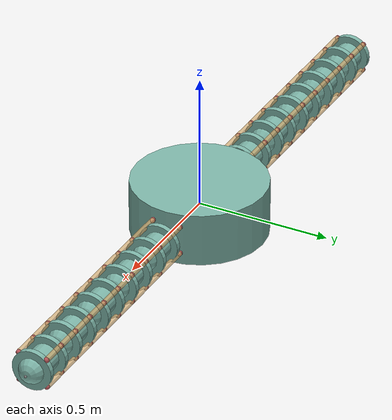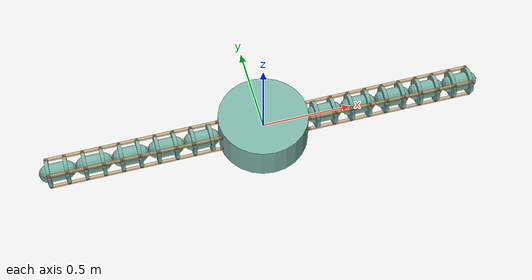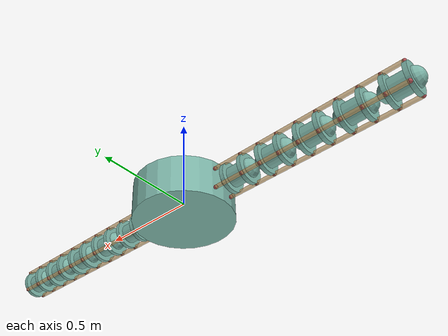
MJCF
<mujoco model="morphology">
    <compiler angle="radian" autolimits="true"/>
    <option viscosity="10" integrator="implicit">
        <flag gravity="disable" contact="disable"/>
    </option>
    <default>
        <default class="/"/>
        <default class="translation">
            <position kp="1000"/>
        </default>
        <default class="rotation">
            <position kp=".2" ctrlrange="-1.571 1.571" ctrllimited="true"/>
        </default>
    </default>
    <worldbody>
        <body name="//unnamed_body_0">
            <body name="central_disc" pos="0 0 0" euler="0 0 0">
                <geom name="central_disc_disc" class="/" type="cylinder" size="0.25 0.10000000000000001"
                      rgba="0.49019607843137253 0.70980392156862748 0.6588235294117647 1" pos="0 0 0" euler="0 0 0"/>
                <body name="arm_0" pos="0.25 0 0" euler="0 0 0">
                    <site name="reference" pos="0 0 0"/>
                    <body name="arm_0_segment_0" pos="0 0 0" euler="0 0 0">
                        <geom name="arm_0_segment_0_capsule" class="/" type="capsule"
                              size="0.050000000000000003 0.050000000000000003"
                              rgba="0.49019607843137253 0.70980392156862748 0.6588235294117647 1"
                              pos="0.10000000000000001 0 0" euler="0 1.5707963267948966 0"/>
                        <joint name="arm_0_segment_0_in_plane_joint" class="/" type="hinge" pos="0 0 0" axis="0 0 1"
                               limited="true" stiffness="10" range="-0.3490658503988659 0.3490658503988659"
                               damping="1"/>
                        <joint name="arm_0_segment_0_out_of_plane_joint" class="/" type="hinge" pos="0 0 0" axis="0 1 0"
                               limited="true" stiffness="10" range="-0.3490658503988659 0.3490658503988659"
                               damping="1"/>
                        <geom name="arm_0_segment_0_tendon_plate_proximal" class="/" type="cylinder"
                              size="0.075000000000000011 0.01"
                              rgba="0.49019607843137253 0.70980392156862748 0.6588235294117647 1"
                              pos="0.050000000000000003 0 0" euler="0 1.5707963267948966 0"/>
                        <site name="arm_0_segment_0_muscle_attachment_point_proximal_0" class="/" type="sphere"
                              rgba="0.71764705882352942 0.33725490196078434 0.34901960784313724 1" size="0.01"
                              pos="0 0.053033008588991078 -0.053033008588991071"/>
                        <site name="arm_0_segment_0_muscle_attachment_point_proximal_1" class="/" type="sphere"
                              rgba="0.71764705882352942 0.33725490196078434 0.34901960784313724 1" size="0.01"
                              pos="0 -0.053033008588991071 -0.053033008588991078"/>
                        <site name="arm_0_segment_0_muscle_attachment_point_proximal_2" class="/" type="sphere"
                              rgba="0.71764705882352942 0.33725490196078434 0.34901960784313724 1" size="0.01"
                              pos="0 0.053033008588991078 0.053033008588991071"/>
                        <site name="arm_0_segment_0_muscle_attachment_point_proximal_3" class="/" type="sphere"
                              rgba="0.71764705882352942 0.33725490196078434 0.34901960784313724 1" size="0.01"
                              pos="0 -0.053033008588991071 0.053033008588991078"/>
                        <geom name="arm_0_segment_0_tendon_plate_distal" class="/" type="cylinder"
                              size="0.075000000000000011 0.01"
                              rgba="0.49019607843137253 0.70980392156862748 0.6588235294117647 1"
                              pos="0.15000000000000002 0 0" euler="0 1.5707963267948966 0"/>
                        <site name="arm_0_segment_0_muscle_attachment_point_distal_0" class="/" type="sphere"
                              rgba="0.71764705882352942 0.33725490196078434 0.34901960784313724 1" size="0.01"
                              pos="0.15000000000000002 0.053033008588991078 -0.053033008588991071"/>
                        <site name="arm_0_segment_0_muscle_attachment_point_distal_1" class="/" type="sphere"
                              rgba="0.71764705882352942 0.33725490196078434 0.34901960784313724 1" size="0.01"
                              pos="0.15000000000000002 -0.053033008588991071 -0.053033008588991078"/>
                        <site name="arm_0_segment_0_muscle_attachment_point_distal_2" class="/" type="sphere"
                              rgba="0.71764705882352942 0.33725490196078434 0.34901960784313724 1" size="0.01"
                              pos="0.15000000000000002 0.053033008588991078 0.053033008588991071"/>
                        <site name="arm_0_segment_0_muscle_attachment_point_distal_3" class="/" type="sphere"
                              rgba="0.71764705882352942 0.33725490196078434 0.34901960784313724 1" size="0.01"
                              pos="0.15000000000000002 -0.053033008588991071 0.053033008588991078"/>
                        <body name="arm_0_segment_1" pos="0.20000000000000001 0 0" euler="0 0 0">
                            <geom name="arm_0_segment_1_capsule" class="/" type="capsule"
                                  size="0.050000000000000003 0.050000000000000003"
                                  rgba="0.49019607843137253 0.70980392156862748 0.6588235294117647 1"
                                  pos="0.10000000000000001 0 0" euler="0 1.5707963267948966 0"/>
                            <joint name="arm_0_segment_1_in_plane_joint" class="/" type="hinge" pos="0 0 0" axis="0 0 1"
                                   limited="true" stiffness="10" range="-0.3490658503988659 0.3490658503988659"
                                   damping="1"/>
                            <joint name="arm_0_segment_1_out_of_plane_joint" class="/" type="hinge" pos="0 0 0"
                                   axis="0 1 0" limited="true" stiffness="10"
                                   range="-0.3490658503988659 0.3490658503988659" damping="1"/>
                            <geom name="arm_0_segment_1_tendon_plate_proximal" class="/" type="cylinder"
                                  size="0.075000000000000011 0.01"
                                  rgba="0.49019607843137253 0.70980392156862748 0.6588235294117647 1"
                                  pos="0.050000000000000003 0 0" euler="0 1.5707963267948966 0"/>
                            <site name="arm_0_segment_1_muscle_attachment_point_proximal_0" class="/" type="sphere"
                                  rgba="0.71764705882352942 0.33725490196078434 0.34901960784313724 1" size="0.01"
                                  pos="0.050000000000000003 0.053033008588991078 -0.053033008588991071"/>
                            <site name="arm_0_segment_1_muscle_attachment_point_proximal_1" class="/" type="sphere"
                                  rgba="0.71764705882352942 0.33725490196078434 0.34901960784313724 1" size="0.01"
                                  pos="0.050000000000000003 -0.053033008588991071 -0.053033008588991078"/>
                            <site name="arm_0_segment_1_muscle_attachment_point_proximal_2" class="/" type="sphere"
                                  rgba="0.71764705882352942 0.33725490196078434 0.34901960784313724 1" size="0.01"
                                  pos="0.050000000000000003 0.053033008588991078 0.053033008588991071"/>
                            <site name="arm_0_segment_1_muscle_attachment_point_proximal_3" class="/" type="sphere"
                                  rgba="0.71764705882352942 0.33725490196078434 0.34901960784313724 1" size="0.01"
                                  pos="0.050000000000000003 -0.053033008588991071 0.053033008588991078"/>
                            <geom name="arm_0_segment_1_tendon_plate_distal" class="/" type="cylinder"
                                  size="0.075000000000000011 0.01"
                                  rgba="0.49019607843137253 0.70980392156862748 0.6588235294117647 1"
                                  pos="0.15000000000000002 0 0" euler="0 1.5707963267948966 0"/>
                            <site name="arm_0_segment_1_muscle_attachment_point_distal_0" class="/" type="sphere"
                                  rgba="0.71764705882352942 0.33725490196078434 0.34901960784313724 1" size="0.01"
                                  pos="0.15000000000000002 0.053033008588991078 -0.053033008588991071"/>
                            <site name="arm_0_segment_1_muscle_attachment_point_distal_1" class="/" type="sphere"
                                  rgba="0.71764705882352942 0.33725490196078434 0.34901960784313724 1" size="0.01"
                                  pos="0.15000000000000002 -0.053033008588991071 -0.053033008588991078"/>
                            <site name="arm_0_segment_1_muscle_attachment_point_distal_2" class="/" type="sphere"
                                  rgba="0.71764705882352942 0.33725490196078434 0.34901960784313724 1" size="0.01"
                                  pos="0.15000000000000002 0.053033008588991078 0.053033008588991071"/>
                            <site name="arm_0_segment_1_muscle_attachment_point_distal_3" class="/" type="sphere"
                                  rgba="0.71764705882352942 0.33725490196078434 0.34901960784313724 1" size="0.01"
                                  pos="0.15000000000000002 -0.053033008588991071 0.053033008588991078"/>
                            <body name="arm_0_segment_2" pos="0.20000000000000001 0 0" euler="0 0 0">
                                <geom name="arm_0_segment_2_capsule" class="/" type="capsule"
                                      size="0.050000000000000003 0.050000000000000003"
                                      rgba="0.49019607843137253 0.70980392156862748 0.6588235294117647 1"
                                      pos="0.10000000000000001 0 0" euler="0 1.5707963267948966 0"/>
                                <joint name="arm_0_segment_2_in_plane_joint" class="/" type="hinge" pos="0 0 0"
                                       axis="0 0 1" limited="true" stiffness="10"
                                       range="-0.3490658503988659 0.3490658503988659" damping="1"/>
                                <joint name="arm_0_segment_2_out_of_plane_joint" class="/" type="hinge" pos="0 0 0"
                                       axis="0 1 0" limited="true" stiffness="10"
                                       range="-0.3490658503988659 0.3490658503988659" damping="1"/>
                                <geom name="arm_0_segment_2_tendon_plate_proximal" class="/" type="cylinder"
                                      size="0.075000000000000011 0.01"
                                      rgba="0.49019607843137253 0.70980392156862748 0.6588235294117647 1"
                                      pos="0.050000000000000003 0 0" euler="0 1.5707963267948966 0"/>
                                <site name="arm_0_segment_2_muscle_attachment_point_proximal_0" class="/" type="sphere"
                                      rgba="0.71764705882352942 0.33725490196078434 0.34901960784313724 1" size="0.01"
                                      pos="0.050000000000000003 0.053033008588991078 -0.053033008588991071"/>
                                <site name="arm_0_segment_2_muscle_attachment_point_proximal_1" class="/" type="sphere"
                                      rgba="0.71764705882352942 0.33725490196078434 0.34901960784313724 1" size="0.01"
                                      pos="0.050000000000000003 -0.053033008588991071 -0.053033008588991078"/>
                                <site name="arm_0_segment_2_muscle_attachment_point_proximal_2" class="/" type="sphere"
                                      rgba="0.71764705882352942 0.33725490196078434 0.34901960784313724 1" size="0.01"
                                      pos="0.050000000000000003 0.053033008588991078 0.053033008588991071"/>
                                <site name="arm_0_segment_2_muscle_attachment_point_proximal_3" class="/" type="sphere"
                                      rgba="0.71764705882352942 0.33725490196078434 0.34901960784313724 1" size="0.01"
                                      pos="0.050000000000000003 -0.053033008588991071 0.053033008588991078"/>
                                <geom name="arm_0_segment_2_tendon_plate_distal" class="/" type="cylinder"
                                      size="0.075000000000000011 0.01"
                                      rgba="0.49019607843137253 0.70980392156862748 0.6588235294117647 1"
                                      pos="0.15000000000000002 0 0" euler="0 1.5707963267948966 0"/>
                                <site name="arm_0_segment_2_muscle_attachment_point_distal_0" class="/" type="sphere"
                                      rgba="0.71764705882352942 0.33725490196078434 0.34901960784313724 1" size="0.01"
                                      pos="0.15000000000000002 0.053033008588991078 -0.053033008588991071"/>
                                <site name="arm_0_segment_2_muscle_attachment_point_distal_1" class="/" type="sphere"
                                      rgba="0.71764705882352942 0.33725490196078434 0.34901960784313724 1" size="0.01"
                                      pos="0.15000000000000002 -0.053033008588991071 -0.053033008588991078"/>
                                <site name="arm_0_segment_2_muscle_attachment_point_distal_2" class="/" type="sphere"
                                      rgba="0.71764705882352942 0.33725490196078434 0.34901960784313724 1" size="0.01"
                                      pos="0.15000000000000002 0.053033008588991078 0.053033008588991071"/>
                                <site name="arm_0_segment_2_muscle_attachment_point_distal_3" class="/" type="sphere"
                                      rgba="0.71764705882352942 0.33725490196078434 0.34901960784313724 1" size="0.01"
                                      pos="0.15000000000000002 -0.053033008588991071 0.053033008588991078"/>
                                <body name="arm_0_segment_3" pos="0.20000000000000001 0 0" euler="0 0 0">
                                    <geom name="arm_0_segment_3_capsule" class="/" type="capsule"
                                          size="0.050000000000000003 0.050000000000000003"
                                          rgba="0.49019607843137253 0.70980392156862748 0.6588235294117647 1"
                                          pos="0.10000000000000001 0 0" euler="0 1.5707963267948966 0"/>
                                    <joint name="arm_0_segment_3_in_plane_joint" class="/" type="hinge" pos="0 0 0"
                                           axis="0 0 1" limited="true" stiffness="10"
                                           range="-0.3490658503988659 0.3490658503988659" damping="1"/>
                                    <joint name="arm_0_segment_3_out_of_plane_joint" class="/" type="hinge" pos="0 0 0"
                                           axis="0 1 0" limited="true" stiffness="10"
                                           range="-0.3490658503988659 0.3490658503988659" damping="1"/>
                                    <geom name="arm_0_segment_3_tendon_plate_proximal" class="/" type="cylinder"
                                          size="0.075000000000000011 0.01"
                                          rgba="0.49019607843137253 0.70980392156862748 0.6588235294117647 1"
                                          pos="0.050000000000000003 0 0" euler="0 1.5707963267948966 0"/>
                                    <site name="arm_0_segment_3_muscle_attachment_point_proximal_0" class="/"
                                          type="sphere"
                                          rgba="0.71764705882352942 0.33725490196078434 0.34901960784313724 1"
                                          size="0.01"
                                          pos="0.050000000000000003 0.053033008588991078 -0.053033008588991071"/>
                                    <site name="arm_0_segment_3_muscle_attachment_point_proximal_1" class="/"
                                          type="sphere"
                                          rgba="0.71764705882352942 0.33725490196078434 0.34901960784313724 1"
                                          size="0.01"
                                          pos="0.050000000000000003 -0.053033008588991071 -0.053033008588991078"/>
                                    <site name="arm_0_segment_3_muscle_attachment_point_proximal_2" class="/"
                                          type="sphere"
                                          rgba="0.71764705882352942 0.33725490196078434 0.34901960784313724 1"
                                          size="0.01"
                                          pos="0.050000000000000003 0.053033008588991078 0.053033008588991071"/>
                                    <site name="arm_0_segment_3_muscle_attachment_point_proximal_3" class="/"
                                          type="sphere"
                                          rgba="0.71764705882352942 0.33725490196078434 0.34901960784313724 1"
                                          size="0.01"
                                          pos="0.050000000000000003 -0.053033008588991071 0.053033008588991078"/>
                                    <geom name="arm_0_segment_3_tendon_plate_distal" class="/" type="cylinder"
                                          size="0.075000000000000011 0.01"
                                          rgba="0.49019607843137253 0.70980392156862748 0.6588235294117647 1"
                                          pos="0.15000000000000002 0 0" euler="0 1.5707963267948966 0"/>
                                    <site name="arm_0_segment_3_muscle_attachment_point_distal_0" class="/"
                                          type="sphere"
                                          rgba="0.71764705882352942 0.33725490196078434 0.34901960784313724 1"
                                          size="0.01"
                                          pos="0.15000000000000002 0.053033008588991078 -0.053033008588991071"/>
                                    <site name="arm_0_segment_3_muscle_attachment_point_distal_1" class="/"
                                          type="sphere"
                                          rgba="0.71764705882352942 0.33725490196078434 0.34901960784313724 1"
                                          size="0.01"
                                          pos="0.15000000000000002 -0.053033008588991071 -0.053033008588991078"/>
                                    <site name="arm_0_segment_3_muscle_attachment_point_distal_2" class="/"
                                          type="sphere"
                                          rgba="0.71764705882352942 0.33725490196078434 0.34901960784313724 1"
                                          size="0.01"
                                          pos="0.15000000000000002 0.053033008588991078 0.053033008588991071"/>
                                    <site name="arm_0_segment_3_muscle_attachment_point_distal_3" class="/"
                                          type="sphere"
                                          rgba="0.71764705882352942 0.33725490196078434 0.34901960784313724 1"
                                          size="0.01"
                                          pos="0.15000000000000002 -0.053033008588991071 0.053033008588991078"/>
                                    <body name="arm_0_segment_4" pos="0.20000000000000001 0 0" euler="0 0 0">
                                        <site name="end_effector" pos="0.20000000000000001 0 0"/>

                                        <geom name="arm_0_segment_4_capsule" class="/" type="capsule"
                                              size="0.050000000000000003 0.050000000000000003"
                                              rgba="0.49019607843137253 0.70980392156862748 0.6588235294117647 1"
                                              pos="0.10000000000000001 0 0" euler="0 1.5707963267948966 0"/>
                                        <joint name="arm_0_segment_4_in_plane_joint" class="/" type="hinge" pos="0 0 0"
                                               axis="0 0 1" limited="true" stiffness="10"
                                               range="-0.3490658503988659 0.3490658503988659" damping="1"/>
                                        <joint name="arm_0_segment_4_out_of_plane_joint" class="/" type="hinge"
                                               pos="0 0 0" axis="0 1 0" limited="true" stiffness="10"
                                               range="-0.3490658503988659 0.3490658503988659" damping="1"/>
                                        <geom name="arm_0_segment_4_tendon_plate_proximal" class="/" type="cylinder"
                                              size="0.075000000000000011 0.01"
                                              rgba="0.49019607843137253 0.70980392156862748 0.6588235294117647 1"
                                              pos="0.050000000000000003 0 0" euler="0 1.5707963267948966 0"/>
                                        <site name="arm_0_segment_4_muscle_attachment_point_proximal_0" class="/"
                                              type="sphere"
                                              rgba="0.71764705882352942 0.33725490196078434 0.34901960784313724 1"
                                              size="0.01"
                                              pos="0.050000000000000003 0.053033008588991078 -0.053033008588991071"/>
                                        <site name="arm_0_segment_4_muscle_attachment_point_proximal_1" class="/"
                                              type="sphere"
                                              rgba="0.71764705882352942 0.33725490196078434 0.34901960784313724 1"
                                              size="0.01"
                                              pos="0.050000000000000003 -0.053033008588991071 -0.053033008588991078"/>
                                        <site name="arm_0_segment_4_muscle_attachment_point_proximal_2" class="/"
                                              type="sphere"
                                              rgba="0.71764705882352942 0.33725490196078434 0.34901960784313724 1"
                                              size="0.01"
                                              pos="0.050000000000000003 0.053033008588991078 0.053033008588991071"/>
                                        <site name="arm_0_segment_4_muscle_attachment_point_proximal_3" class="/"
                                              type="sphere"
                                              rgba="0.71764705882352942 0.33725490196078434 0.34901960784313724 1"
                                              size="0.01"
                                              pos="0.050000000000000003 -0.053033008588991071 0.053033008588991078"/>
                                        <geom name="arm_0_segment_4_tendon_plate_distal" class="/" type="cylinder"
                                              size="0.075000000000000011 0.01"
                                              rgba="0.49019607843137253 0.70980392156862748 0.6588235294117647 1"
                                              pos="0.15000000000000002 0 0" euler="0 1.5707963267948966 0"/>
                                        <site name="arm_0_segment_4_muscle_attachment_point_distal_0" class="/"
                                              type="sphere"
                                              rgba="0.71764705882352942 0.33725490196078434 0.34901960784313724 1"
                                              size="0.01"
                                              pos="0.15000000000000002 0.053033008588991078 -0.053033008588991071"/>
                                        <site name="arm_0_segment_4_muscle_attachment_point_distal_1" class="/"
                                              type="sphere"
                                              rgba="0.71764705882352942 0.33725490196078434 0.34901960784313724 1"
                                              size="0.01"
                                              pos="0.15000000000000002 -0.053033008588991071 -0.053033008588991078"/>
                                        <site name="arm_0_segment_4_muscle_attachment_point_distal_2" class="/"
                                              type="sphere"
                                              rgba="0.71764705882352942 0.33725490196078434 0.34901960784313724 1"
                                              size="0.01"
                                              pos="0.15000000000000002 0.053033008588991078 0.053033008588991071"/>
                                        <site name="arm_0_segment_4_muscle_attachment_point_distal_3" class="/"
                                              type="sphere"
                                              rgba="0.71764705882352942 0.33725490196078434 0.34901960784313724 1"
                                              size="0.01"
                                              pos="0.15000000000000002 -0.053033008588991071 0.053033008588991078"/>
                                    </body>
                                </body>
                            </body>
                        </body>
                    </body>
                    <site name="arm_0_muscle_attachment_point_0" class="/" type="sphere"
                          rgba="0.71764705882352942 0.33725490196078434 0.34901960784313724 1" size="0.01"
                          pos="0 0.053033008588991078 -0.053033008588991071"/>
                    <site name="arm_0_muscle_attachment_point_1" class="/" type="sphere"
                          rgba="0.71764705882352942 0.33725490196078434 0.34901960784313724 1" size="0.01"
                          pos="0 -0.053033008588991071 -0.053033008588991078"/>
                    <site name="arm_0_muscle_attachment_point_2" class="/" type="sphere"
                          rgba="0.71764705882352942 0.33725490196078434 0.34901960784313724 1" size="0.01"
                          pos="0 0.053033008588991078 0.053033008588991071"/>
                    <site name="arm_0_muscle_attachment_point_3" class="/" type="sphere"
                          rgba="0.71764705882352942 0.33725490196078434 0.34901960784313724 1" size="0.01"
                          pos="0 -0.053033008588991071 0.053033008588991078"/>
                </body>
                <body name="arm_1" pos="-0.25 3.061616997868383e-17 0" euler="0 0 3.1415926535897931">
                    <body name="arm_1_segment_0" pos="0 0 0" euler="0 0 0">
                        <geom name="arm_1_segment_0_capsule" class="/" type="capsule"
                              size="0.050000000000000003 0.050000000000000003"
                              rgba="0.49019607843137253 0.70980392156862748 0.6588235294117647 1"
                              pos="0.10000000000000001 0 0" euler="0 1.5707963267948966 0"/>
                        <joint name="arm_1_segment_0_in_plane_joint" class="/" type="hinge" pos="0 0 0" axis="0 0 1"
                               limited="true" stiffness="10" range="-0.3490658503988659 0.3490658503988659"
                               damping="1"/>
                        <joint name="arm_1_segment_0_out_of_plane_joint" class="/" type="hinge" pos="0 0 0" axis="0 1 0"
                               limited="true" stiffness="10" range="-0.3490658503988659 0.3490658503988659"
                               damping="1"/>
                        <geom name="arm_1_segment_0_tendon_plate_proximal" class="/" type="cylinder"
                              size="0.075000000000000011 0.01"
                              rgba="0.49019607843137253 0.70980392156862748 0.6588235294117647 1"
                              pos="0.050000000000000003 0 0" euler="0 1.5707963267948966 0"/>
                        <site name="arm_1_segment_0_muscle_attachment_point_proximal_0" class="/" type="sphere"
                              rgba="0.71764705882352942 0.33725490196078434 0.34901960784313724 1" size="0.01"
                              pos="0 0.053033008588991078 -0.053033008588991071"/>
                        <site name="arm_1_segment_0_muscle_attachment_point_proximal_1" class="/" type="sphere"
                              rgba="0.71764705882352942 0.33725490196078434 0.34901960784313724 1" size="0.01"
                              pos="0 -0.053033008588991071 -0.053033008588991078"/>
                        <site name="arm_1_segment_0_muscle_attachment_point_proximal_2" class="/" type="sphere"
                              rgba="0.71764705882352942 0.33725490196078434 0.34901960784313724 1" size="0.01"
                              pos="0 0.053033008588991078 0.053033008588991071"/>
                        <site name="arm_1_segment_0_muscle_attachment_point_proximal_3" class="/" type="sphere"
                              rgba="0.71764705882352942 0.33725490196078434 0.34901960784313724 1" size="0.01"
                              pos="0 -0.053033008588991071 0.053033008588991078"/>
                        <geom name="arm_1_segment_0_tendon_plate_distal" class="/" type="cylinder"
                              size="0.075000000000000011 0.01"
                              rgba="0.49019607843137253 0.70980392156862748 0.6588235294117647 1"
                              pos="0.15000000000000002 0 0" euler="0 1.5707963267948966 0"/>
                        <site name="arm_1_segment_0_muscle_attachment_point_distal_0" class="/" type="sphere"
                              rgba="0.71764705882352942 0.33725490196078434 0.34901960784313724 1" size="0.01"
                              pos="0.15000000000000002 0.053033008588991078 -0.053033008588991071"/>
                        <site name="arm_1_segment_0_muscle_attachment_point_distal_1" class="/" type="sphere"
                              rgba="0.71764705882352942 0.33725490196078434 0.34901960784313724 1" size="0.01"
                              pos="0.15000000000000002 -0.053033008588991071 -0.053033008588991078"/>
                        <site name="arm_1_segment_0_muscle_attachment_point_distal_2" class="/" type="sphere"
                              rgba="0.71764705882352942 0.33725490196078434 0.34901960784313724 1" size="0.01"
                              pos="0.15000000000000002 0.053033008588991078 0.053033008588991071"/>
                        <site name="arm_1_segment_0_muscle_attachment_point_distal_3" class="/" type="sphere"
                              rgba="0.71764705882352942 0.33725490196078434 0.34901960784313724 1" size="0.01"
                              pos="0.15000000000000002 -0.053033008588991071 0.053033008588991078"/>
                        <body name="arm_1_segment_1" pos="0.20000000000000001 0 0" euler="0 0 0">
                            <geom name="arm_1_segment_1_capsule" class="/" type="capsule"
                                  size="0.050000000000000003 0.050000000000000003"
                                  rgba="0.49019607843137253 0.70980392156862748 0.6588235294117647 1"
                                  pos="0.10000000000000001 0 0" euler="0 1.5707963267948966 0"/>
                            <joint name="arm_1_segment_1_in_plane_joint" class="/" type="hinge" pos="0 0 0" axis="0 0 1"
                                   limited="true" stiffness="10" range="-0.3490658503988659 0.3490658503988659"
                                   damping="1"/>
                            <joint name="arm_1_segment_1_out_of_plane_joint" class="/" type="hinge" pos="0 0 0"
                                   axis="0 1 0" limited="true" stiffness="10"
                                   range="-0.3490658503988659 0.3490658503988659" damping="1"/>
                            <geom name="arm_1_segment_1_tendon_plate_proximal" class="/" type="cylinder"
                                  size="0.075000000000000011 0.01"
                                  rgba="0.49019607843137253 0.70980392156862748 0.6588235294117647 1"
                                  pos="0.050000000000000003 0 0" euler="0 1.5707963267948966 0"/>
                            <site name="arm_1_segment_1_muscle_attachment_point_proximal_0" class="/" type="sphere"
                                  rgba="0.71764705882352942 0.33725490196078434 0.34901960784313724 1" size="0.01"
                                  pos="0.050000000000000003 0.053033008588991078 -0.053033008588991071"/>
                            <site name="arm_1_segment_1_muscle_attachment_point_proximal_1" class="/" type="sphere"
                                  rgba="0.71764705882352942 0.33725490196078434 0.34901960784313724 1" size="0.01"
                                  pos="0.050000000000000003 -0.053033008588991071 -0.053033008588991078"/>
                            <site name="arm_1_segment_1_muscle_attachment_point_proximal_2" class="/" type="sphere"
                                  rgba="0.71764705882352942 0.33725490196078434 0.34901960784313724 1" size="0.01"
                                  pos="0.050000000000000003 0.053033008588991078 0.053033008588991071"/>
                            <site name="arm_1_segment_1_muscle_attachment_point_proximal_3" class="/" type="sphere"
                                  rgba="0.71764705882352942 0.33725490196078434 0.34901960784313724 1" size="0.01"
                                  pos="0.050000000000000003 -0.053033008588991071 0.053033008588991078"/>
                            <geom name="arm_1_segment_1_tendon_plate_distal" class="/" type="cylinder"
                                  size="0.075000000000000011 0.01"
                                  rgba="0.49019607843137253 0.70980392156862748 0.6588235294117647 1"
                                  pos="0.15000000000000002 0 0" euler="0 1.5707963267948966 0"/>
                            <site name="arm_1_segment_1_muscle_attachment_point_distal_0" class="/" type="sphere"
                                  rgba="0.71764705882352942 0.33725490196078434 0.34901960784313724 1" size="0.01"
                                  pos="0.15000000000000002 0.053033008588991078 -0.053033008588991071"/>
                            <site name="arm_1_segment_1_muscle_attachment_point_distal_1" class="/" type="sphere"
                                  rgba="0.71764705882352942 0.33725490196078434 0.34901960784313724 1" size="0.01"
                                  pos="0.15000000000000002 -0.053033008588991071 -0.053033008588991078"/>
                            <site name="arm_1_segment_1_muscle_attachment_point_distal_2" class="/" type="sphere"
                                  rgba="0.71764705882352942 0.33725490196078434 0.34901960784313724 1" size="0.01"
                                  pos="0.15000000000000002 0.053033008588991078 0.053033008588991071"/>
                            <site name="arm_1_segment_1_muscle_attachment_point_distal_3" class="/" type="sphere"
                                  rgba="0.71764705882352942 0.33725490196078434 0.34901960784313724 1" size="0.01"
                                  pos="0.15000000000000002 -0.053033008588991071 0.053033008588991078"/>
                            <body name="arm_1_segment_2" pos="0.20000000000000001 0 0" euler="0 0 0">
                                <geom name="arm_1_segment_2_capsule" class="/" type="capsule"
                                      size="0.050000000000000003 0.050000000000000003"
                                      rgba="0.49019607843137253 0.70980392156862748 0.6588235294117647 1"
                                      pos="0.10000000000000001 0 0" euler="0 1.5707963267948966 0"/>
                                <joint name="arm_1_segment_2_in_plane_joint" class="/" type="hinge" pos="0 0 0"
                                       axis="0 0 1" limited="true" stiffness="10"
                                       range="-0.3490658503988659 0.3490658503988659" damping="1"/>
                                <joint name="arm_1_segment_2_out_of_plane_joint" class="/" type="hinge" pos="0 0 0"
                                       axis="0 1 0" limited="true" stiffness="10"
                                       range="-0.3490658503988659 0.3490658503988659" damping="1"/>
                                <geom name="arm_1_segment_2_tendon_plate_proximal" class="/" type="cylinder"
                                      size="0.075000000000000011 0.01"
                                      rgba="0.49019607843137253 0.70980392156862748 0.6588235294117647 1"
                                      pos="0.050000000000000003 0 0" euler="0 1.5707963267948966 0"/>
                                <site name="arm_1_segment_2_muscle_attachment_point_proximal_0" class="/" type="sphere"
                                      rgba="0.71764705882352942 0.33725490196078434 0.34901960784313724 1" size="0.01"
                                      pos="0.050000000000000003 0.053033008588991078 -0.053033008588991071"/>
                                <site name="arm_1_segment_2_muscle_attachment_point_proximal_1" class="/" type="sphere"
                                      rgba="0.71764705882352942 0.33725490196078434 0.34901960784313724 1" size="0.01"
                                      pos="0.050000000000000003 -0.053033008588991071 -0.053033008588991078"/>
                                <site name="arm_1_segment_2_muscle_attachment_point_proximal_2" class="/" type="sphere"
                                      rgba="0.71764705882352942 0.33725490196078434 0.34901960784313724 1" size="0.01"
                                      pos="0.050000000000000003 0.053033008588991078 0.053033008588991071"/>
                                <site name="arm_1_segment_2_muscle_attachment_point_proximal_3" class="/" type="sphere"
                                      rgba="0.71764705882352942 0.33725490196078434 0.34901960784313724 1" size="0.01"
                                      pos="0.050000000000000003 -0.053033008588991071 0.053033008588991078"/>
                                <geom name="arm_1_segment_2_tendon_plate_distal" class="/" type="cylinder"
                                      size="0.075000000000000011 0.01"
                                      rgba="0.49019607843137253 0.70980392156862748 0.6588235294117647 1"
                                      pos="0.15000000000000002 0 0" euler="0 1.5707963267948966 0"/>
                                <site name="arm_1_segment_2_muscle_attachment_point_distal_0" class="/" type="sphere"
                                      rgba="0.71764705882352942 0.33725490196078434 0.34901960784313724 1" size="0.01"
                                      pos="0.15000000000000002 0.053033008588991078 -0.053033008588991071"/>
                                <site name="arm_1_segment_2_muscle_attachment_point_distal_1" class="/" type="sphere"
                                      rgba="0.71764705882352942 0.33725490196078434 0.34901960784313724 1" size="0.01"
                                      pos="0.15000000000000002 -0.053033008588991071 -0.053033008588991078"/>
                                <site name="arm_1_segment_2_muscle_attachment_point_distal_2" class="/" type="sphere"
                                      rgba="0.71764705882352942 0.33725490196078434 0.34901960784313724 1" size="0.01"
                                      pos="0.15000000000000002 0.053033008588991078 0.053033008588991071"/>
                                <site name="arm_1_segment_2_muscle_attachment_point_distal_3" class="/" type="sphere"
                                      rgba="0.71764705882352942 0.33725490196078434 0.34901960784313724 1" size="0.01"
                                      pos="0.15000000000000002 -0.053033008588991071 0.053033008588991078"/>
                                <body name="arm_1_segment_3" pos="0.20000000000000001 0 0" euler="0 0 0">
                                    <geom name="arm_1_segment_3_capsule" class="/" type="capsule"
                                          size="0.050000000000000003 0.050000000000000003"
                                          rgba="0.49019607843137253 0.70980392156862748 0.6588235294117647 1"
                                          pos="0.10000000000000001 0 0" euler="0 1.5707963267948966 0"/>
                                    <joint name="arm_1_segment_3_in_plane_joint" class="/" type="hinge" pos="0 0 0"
                                           axis="0 0 1" limited="true" stiffness="10"
                                           range="-0.3490658503988659 0.3490658503988659" damping="1"/>
                                    <joint name="arm_1_segment_3_out_of_plane_joint" class="/" type="hinge" pos="0 0 0"
                                           axis="0 1 0" limited="true" stiffness="10"
                                           range="-0.3490658503988659 0.3490658503988659" damping="1"/>
                                    <geom name="arm_1_segment_3_tendon_plate_proximal" class="/" type="cylinder"
                                          size="0.075000000000000011 0.01"
                                          rgba="0.49019607843137253 0.70980392156862748 0.6588235294117647 1"
                                          pos="0.050000000000000003 0 0" euler="0 1.5707963267948966 0"/>
                                    <site name="arm_1_segment_3_muscle_attachment_point_proximal_0" class="/"
                                          type="sphere"
                                          rgba="0.71764705882352942 0.33725490196078434 0.34901960784313724 1"
                                          size="0.01"
                                          pos="0.050000000000000003 0.053033008588991078 -0.053033008588991071"/>
                                    <site name="arm_1_segment_3_muscle_attachment_point_proximal_1" class="/"
                                          type="sphere"
                                          rgba="0.71764705882352942 0.33725490196078434 0.34901960784313724 1"
                                          size="0.01"
                                          pos="0.050000000000000003 -0.053033008588991071 -0.053033008588991078"/>
                                    <site name="arm_1_segment_3_muscle_attachment_point_proximal_2" class="/"
                                          type="sphere"
                                          rgba="0.71764705882352942 0.33725490196078434 0.34901960784313724 1"
                                          size="0.01"
                                          pos="0.050000000000000003 0.053033008588991078 0.053033008588991071"/>
                                    <site name="arm_1_segment_3_muscle_attachment_point_proximal_3" class="/"
                                          type="sphere"
                                          rgba="0.71764705882352942 0.33725490196078434 0.34901960784313724 1"
                                          size="0.01"
                                          pos="0.050000000000000003 -0.053033008588991071 0.053033008588991078"/>
                                    <geom name="arm_1_segment_3_tendon_plate_distal" class="/" type="cylinder"
                                          size="0.075000000000000011 0.01"
                                          rgba="0.49019607843137253 0.70980392156862748 0.6588235294117647 1"
                                          pos="0.15000000000000002 0 0" euler="0 1.5707963267948966 0"/>
                                    <site name="arm_1_segment_3_muscle_attachment_point_distal_0" class="/"
                                          type="sphere"
                                          rgba="0.71764705882352942 0.33725490196078434 0.34901960784313724 1"
                                          size="0.01"
                                          pos="0.15000000000000002 0.053033008588991078 -0.053033008588991071"/>
                                    <site name="arm_1_segment_3_muscle_attachment_point_distal_1" class="/"
                                          type="sphere"
                                          rgba="0.71764705882352942 0.33725490196078434 0.34901960784313724 1"
                                          size="0.01"
                                          pos="0.15000000000000002 -0.053033008588991071 -0.053033008588991078"/>
                                    <site name="arm_1_segment_3_muscle_attachment_point_distal_2" class="/"
                                          type="sphere"
                                          rgba="0.71764705882352942 0.33725490196078434 0.34901960784313724 1"
                                          size="0.01"
                                          pos="0.15000000000000002 0.053033008588991078 0.053033008588991071"/>
                                    <site name="arm_1_segment_3_muscle_attachment_point_distal_3" class="/"
                                          type="sphere"
                                          rgba="0.71764705882352942 0.33725490196078434 0.34901960784313724 1"
                                          size="0.01"
                                          pos="0.15000000000000002 -0.053033008588991071 0.053033008588991078"/>
                                    <body name="arm_1_segment_4" pos="0.20000000000000001 0 0" euler="0 0 0">
                                        <geom name="arm_1_segment_4_capsule" class="/" type="capsule"
                                              size="0.050000000000000003 0.050000000000000003"
                                              rgba="0.49019607843137253 0.70980392156862748 0.6588235294117647 1"
                                              pos="0.10000000000000001 0 0" euler="0 1.5707963267948966 0"/>
                                        <joint name="arm_1_segment_4_in_plane_joint" class="/" type="hinge" pos="0 0 0"
                                               axis="0 0 1" limited="true" stiffness="10"
                                               range="-0.3490658503988659 0.3490658503988659" damping="1"/>
                                        <joint name="arm_1_segment_4_out_of_plane_joint" class="/" type="hinge"
                                               pos="0 0 0" axis="0 1 0" limited="true" stiffness="10"
                                               range="-0.3490658503988659 0.3490658503988659" damping="1"/>
                                        <geom name="arm_1_segment_4_tendon_plate_proximal" class="/" type="cylinder"
                                              size="0.075000000000000011 0.01"
                                              rgba="0.49019607843137253 0.70980392156862748 0.6588235294117647 1"
                                              pos="0.050000000000000003 0 0" euler="0 1.5707963267948966 0"/>
                                        <site name="arm_1_segment_4_muscle_attachment_point_proximal_0" class="/"
                                              type="sphere"
                                              rgba="0.71764705882352942 0.33725490196078434 0.34901960784313724 1"
                                              size="0.01"
                                              pos="0.050000000000000003 0.053033008588991078 -0.053033008588991071"/>
                                        <site name="arm_1_segment_4_muscle_attachment_point_proximal_1" class="/"
                                              type="sphere"
                                              rgba="0.71764705882352942 0.33725490196078434 0.34901960784313724 1"
                                              size="0.01"
                                              pos="0.050000000000000003 -0.053033008588991071 -0.053033008588991078"/>
                                        <site name="arm_1_segment_4_muscle_attachment_point_proximal_2" class="/"
                                              type="sphere"
                                              rgba="0.71764705882352942 0.33725490196078434 0.34901960784313724 1"
                                              size="0.01"
                                              pos="0.050000000000000003 0.053033008588991078 0.053033008588991071"/>
                                        <site name="arm_1_segment_4_muscle_attachment_point_proximal_3" class="/"
                                              type="sphere"
                                              rgba="0.71764705882352942 0.33725490196078434 0.34901960784313724 1"
                                              size="0.01"
                                              pos="0.050000000000000003 -0.053033008588991071 0.053033008588991078"/>
                                        <geom name="arm_1_segment_4_tendon_plate_distal" class="/" type="cylinder"
                                              size="0.075000000000000011 0.01"
                                              rgba="0.49019607843137253 0.70980392156862748 0.6588235294117647 1"
                                              pos="0.15000000000000002 0 0" euler="0 1.5707963267948966 0"/>
                                        <site name="arm_1_segment_4_muscle_attachment_point_distal_0" class="/"
                                              type="sphere"
                                              rgba="0.71764705882352942 0.33725490196078434 0.34901960784313724 1"
                                              size="0.01"
                                              pos="0.15000000000000002 0.053033008588991078 -0.053033008588991071"/>
                                        <site name="arm_1_segment_4_muscle_attachment_point_distal_1" class="/"
                                              type="sphere"
                                              rgba="0.71764705882352942 0.33725490196078434 0.34901960784313724 1"
                                              size="0.01"
                                              pos="0.15000000000000002 -0.053033008588991071 -0.053033008588991078"/>
                                        <site name="arm_1_segment_4_muscle_attachment_point_distal_2" class="/"
                                              type="sphere"
                                              rgba="0.71764705882352942 0.33725490196078434 0.34901960784313724 1"
                                              size="0.01"
                                              pos="0.15000000000000002 0.053033008588991078 0.053033008588991071"/>
                                        <site name="arm_1_segment_4_muscle_attachment_point_distal_3" class="/"
                                              type="sphere"
                                              rgba="0.71764705882352942 0.33725490196078434 0.34901960784313724 1"
                                              size="0.01"
                                              pos="0.15000000000000002 -0.053033008588991071 0.053033008588991078"/>
                                    </body>
                                </body>
                            </body>
                        </body>
                    </body>
                    <site name="arm_1_muscle_attachment_point_0" class="/" type="sphere"
                          rgba="0.71764705882352942 0.33725490196078434 0.34901960784313724 1" size="0.01"
                          pos="0 0.053033008588991078 -0.053033008588991071"/>
                    <site name="arm_1_muscle_attachment_point_1" class="/" type="sphere"
                          rgba="0.71764705882352942 0.33725490196078434 0.34901960784313724 1" size="0.01"
                          pos="0 -0.053033008588991071 -0.053033008588991078"/>
                    <site name="arm_1_muscle_attachment_point_2" class="/" type="sphere"
                          rgba="0.71764705882352942 0.33725490196078434 0.34901960784313724 1" size="0.01"
                          pos="0 0.053033008588991078 0.053033008588991071"/>
                    <site name="arm_1_muscle_attachment_point_3" class="/" type="sphere"
                          rgba="0.71764705882352942 0.33725490196078434 0.34901960784313724 1" size="0.01"
                          pos="0 -0.053033008588991071 0.053033008588991078"/>
                </body>
            </body>
        </body>
    </worldbody>
    <tendon>
        <spatial name="arm_0_tendon_0" class="/" limited="true" range="0.47500000000000009 2.8500000000000005"
                 width="0.01" rgba="0.83921568627450982 0.68235294117647061 0.44705882352941179 0.74509803921568629">
            <site site="arm_0_muscle_attachment_point_0"/>
            <site site="arm_0_segment_0_muscle_attachment_point_proximal_0"/>
            <site site="arm_0_segment_0_muscle_attachment_point_distal_0"/>
            <site site="arm_0_segment_1_muscle_attachment_point_proximal_0"/>
            <site site="arm_0_segment_1_muscle_attachment_point_distal_0"/>
            <site site="arm_0_segment_2_muscle_attachment_point_proximal_0"/>
            <site site="arm_0_segment_2_muscle_attachment_point_distal_0"/>
            <site site="arm_0_segment_3_muscle_attachment_point_proximal_0"/>
            <site site="arm_0_segment_3_muscle_attachment_point_distal_0"/>
            <site site="arm_0_segment_4_muscle_attachment_point_proximal_0"/>
            <site site="arm_0_segment_4_muscle_attachment_point_distal_0"/>
        </spatial>
        <spatial name="arm_0_tendon_1" class="/" limited="true" range="0.47500000000000009 2.8500000000000005"
                 width="0.01" rgba="0.83921568627450982 0.68235294117647061 0.44705882352941179 0.74509803921568629">
            <site site="arm_0_muscle_attachment_point_1"/>
            <site site="arm_0_segment_0_muscle_attachment_point_proximal_1"/>
            <site site="arm_0_segment_0_muscle_attachment_point_distal_1"/>
            <site site="arm_0_segment_1_muscle_attachment_point_proximal_1"/>
            <site site="arm_0_segment_1_muscle_attachment_point_distal_1"/>
            <site site="arm_0_segment_2_muscle_attachment_point_proximal_1"/>
            <site site="arm_0_segment_2_muscle_attachment_point_distal_1"/>
            <site site="arm_0_segment_3_muscle_attachment_point_proximal_1"/>
            <site site="arm_0_segment_3_muscle_attachment_point_distal_1"/>
            <site site="arm_0_segment_4_muscle_attachment_point_proximal_1"/>
            <site site="arm_0_segment_4_muscle_attachment_point_distal_1"/>
        </spatial>
        <spatial name="arm_0_tendon_2" class="/" limited="true" range="0.47500000000000009 2.8500000000000005"
                 width="0.01" rgba="0.83921568627450982 0.68235294117647061 0.44705882352941179 0.74509803921568629">
            <site site="arm_0_muscle_attachment_point_2"/>
            <site site="arm_0_segment_0_muscle_attachment_point_proximal_2"/>
            <site site="arm_0_segment_0_muscle_attachment_point_distal_2"/>
            <site site="arm_0_segment_1_muscle_attachment_point_proximal_2"/>
            <site site="arm_0_segment_1_muscle_attachment_point_distal_2"/>
            <site site="arm_0_segment_2_muscle_attachment_point_proximal_2"/>
            <site site="arm_0_segment_2_muscle_attachment_point_distal_2"/>
            <site site="arm_0_segment_3_muscle_attachment_point_proximal_2"/>
            <site site="arm_0_segment_3_muscle_attachment_point_distal_2"/>
            <site site="arm_0_segment_4_muscle_attachment_point_proximal_2"/>
            <site site="arm_0_segment_4_muscle_attachment_point_distal_2"/>
        </spatial>
        <spatial name="arm_0_tendon_3" class="/" limited="true" range="0.47500000000000009 2.8500000000000005"
                 width="0.01" rgba="0.83921568627450982 0.68235294117647061 0.44705882352941179 0.74509803921568629">
            <site site="arm_0_muscle_attachment_point_3"/>
            <site site="arm_0_segment_0_muscle_attachment_point_proximal_3"/>
            <site site="arm_0_segment_0_muscle_attachment_point_distal_3"/>
            <site site="arm_0_segment_1_muscle_attachment_point_proximal_3"/>
            <site site="arm_0_segment_1_muscle_attachment_point_distal_3"/>
            <site site="arm_0_segment_2_muscle_attachment_point_proximal_3"/>
            <site site="arm_0_segment_2_muscle_attachment_point_distal_3"/>
            <site site="arm_0_segment_3_muscle_attachment_point_proximal_3"/>
            <site site="arm_0_segment_3_muscle_attachment_point_distal_3"/>
            <site site="arm_0_segment_4_muscle_attachment_point_proximal_3"/>
            <site site="arm_0_segment_4_muscle_attachment_point_distal_3"/>
        </spatial>
        <spatial name="arm_1_tendon_0" class="/" limited="true" range="0.47500000000000009 2.8500000000000005"
                 width="0.01" rgba="0.83921568627450982 0.68235294117647061 0.44705882352941179 0.74509803921568629">
            <site site="arm_1_muscle_attachment_point_0"/>
            <site site="arm_1_segment_0_muscle_attachment_point_proximal_0"/>
            <site site="arm_1_segment_0_muscle_attachment_point_distal_0"/>
            <site site="arm_1_segment_1_muscle_attachment_point_proximal_0"/>
            <site site="arm_1_segment_1_muscle_attachment_point_distal_0"/>
            <site site="arm_1_segment_2_muscle_attachment_point_proximal_0"/>
            <site site="arm_1_segment_2_muscle_attachment_point_distal_0"/>
            <site site="arm_1_segment_3_muscle_attachment_point_proximal_0"/>
            <site site="arm_1_segment_3_muscle_attachment_point_distal_0"/>
            <site site="arm_1_segment_4_muscle_attachment_point_proximal_0"/>
            <site site="arm_1_segment_4_muscle_attachment_point_distal_0"/>
        </spatial>
        <spatial name="arm_1_tendon_1" class="/" limited="true" range="0.47500000000000009 2.8500000000000005"
                 width="0.01" rgba="0.83921568627450982 0.68235294117647061 0.44705882352941179 0.74509803921568629">
            <site site="arm_1_muscle_attachment_point_1"/>
            <site site="arm_1_segment_0_muscle_attachment_point_proximal_1"/>
            <site site="arm_1_segment_0_muscle_attachment_point_distal_1"/>
            <site site="arm_1_segment_1_muscle_attachment_point_proximal_1"/>
            <site site="arm_1_segment_1_muscle_attachment_point_distal_1"/>
            <site site="arm_1_segment_2_muscle_attachment_point_proximal_1"/>
            <site site="arm_1_segment_2_muscle_attachment_point_distal_1"/>
            <site site="arm_1_segment_3_muscle_attachment_point_proximal_1"/>
            <site site="arm_1_segment_3_muscle_attachment_point_distal_1"/>
            <site site="arm_1_segment_4_muscle_attachment_point_proximal_1"/>
            <site site="arm_1_segment_4_muscle_attachment_point_distal_1"/>
        </spatial>
        <spatial name="arm_1_tendon_2" class="/" limited="true" range="0.47500000000000009 2.8500000000000005"
                 width="0.01" rgba="0.83921568627450982 0.68235294117647061 0.44705882352941179 0.74509803921568629">
            <site site="arm_1_muscle_attachment_point_2"/>
            <site site="arm_1_segment_0_muscle_attachment_point_proximal_2"/>
            <site site="arm_1_segment_0_muscle_attachment_point_distal_2"/>
            <site site="arm_1_segment_1_muscle_attachment_point_proximal_2"/>
            <site site="arm_1_segment_1_muscle_attachment_point_distal_2"/>
            <site site="arm_1_segment_2_muscle_attachment_point_proximal_2"/>
            <site site="arm_1_segment_2_muscle_attachment_point_distal_2"/>
            <site site="arm_1_segment_3_muscle_attachment_point_proximal_2"/>
            <site site="arm_1_segment_3_muscle_attachment_point_distal_2"/>
            <site site="arm_1_segment_4_muscle_attachment_point_proximal_2"/>
            <site site="arm_1_segment_4_muscle_attachment_point_distal_2"/>
        </spatial>
        <spatial name="arm_1_tendon_3" class="/" limited="true" range="0.47500000000000009 2.8500000000000005"
                 width="0.01" rgba="0.83921568627450982 0.68235294117647061 0.44705882352941179 0.74509803921568629">
            <site site="arm_1_muscle_attachment_point_3"/>
            <site site="arm_1_segment_0_muscle_attachment_point_proximal_3"/>
            <site site="arm_1_segment_0_muscle_attachment_point_distal_3"/>
            <site site="arm_1_segment_1_muscle_attachment_point_proximal_3"/>
            <site site="arm_1_segment_1_muscle_attachment_point_distal_3"/>
            <site site="arm_1_segment_2_muscle_attachment_point_proximal_3"/>
            <site site="arm_1_segment_2_muscle_attachment_point_distal_3"/>
            <site site="arm_1_segment_3_muscle_attachment_point_proximal_3"/>
            <site site="arm_1_segment_3_muscle_attachment_point_distal_3"/>
            <site site="arm_1_segment_4_muscle_attachment_point_proximal_3"/>
            <site site="arm_1_segment_4_muscle_attachment_point_distal_3"/>
        </spatial>
    </tendon>
    <sensor>
        <framepos name="central_disc_framepos" objtype="geom" objname="central_disc_disc"/>
        <framequat name="central_disc_framequat" objtype="geom" objname="central_disc_disc"/>
        <framepos name="arm_0_segment_4_framepos" objtype="geom" objname="arm_0_segment_4_capsule"/>
        <tendonpos name="arm_0_tendon_0_tendonpos" tendon="arm_0_tendon_0"/>
        <tendonpos name="arm_0_tendon_1_tendonpos" tendon="arm_0_tendon_1"/>
        <tendonpos name="arm_0_tendon_2_tendonpos" tendon="arm_0_tendon_2"/>
        <tendonpos name="arm_0_tendon_3_tendonpos" tendon="arm_0_tendon_3"/>
        <framepos name="arm_1_segment_4_framepos" objtype="geom" objname="arm_1_segment_4_capsule"/>
        <tendonpos name="arm_1_tendon_0_tendonpos" tendon="arm_1_tendon_0"/>
        <tendonpos name="arm_1_tendon_1_tendonpos" tendon="arm_1_tendon_1"/>
        <tendonpos name="arm_1_tendon_2_tendonpos" tendon="arm_1_tendon_2"/>
        <tendonpos name="arm_1_tendon_3_tendonpos" tendon="arm_1_tendon_3"/>
    </sensor>

    <actuator>
        <position name="y" site="end_effector" refsite="reference" gear="0 1 0 0 0 0" class="translation"/>
        <position name="z" site="end_effector" refsite="reference" gear="0 0 1 0 0 0" class="translation"/>
    </actuator>
</mujoco>
